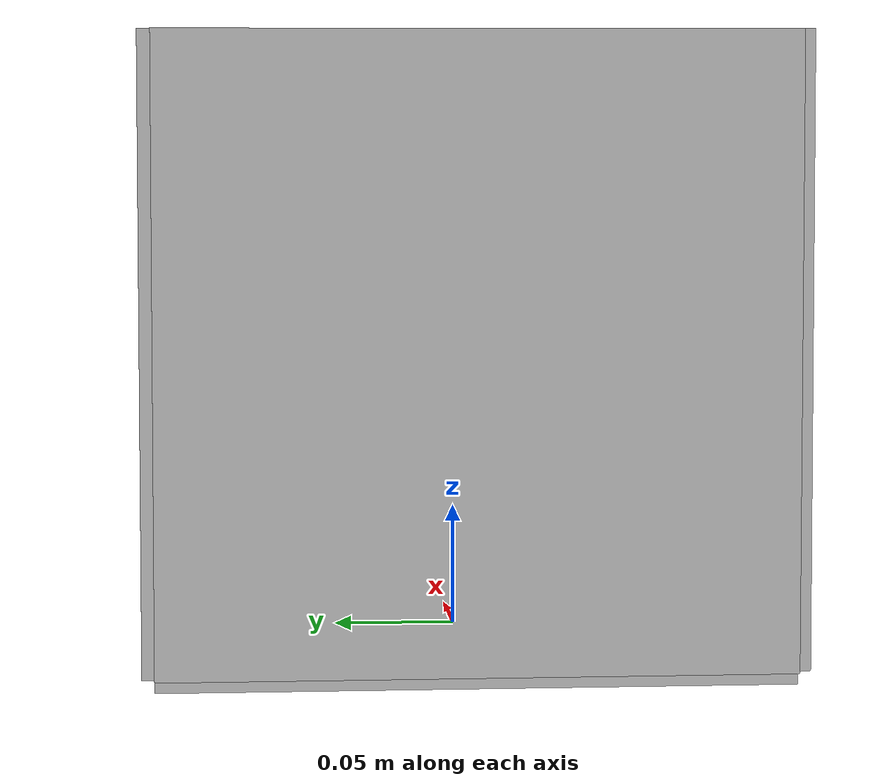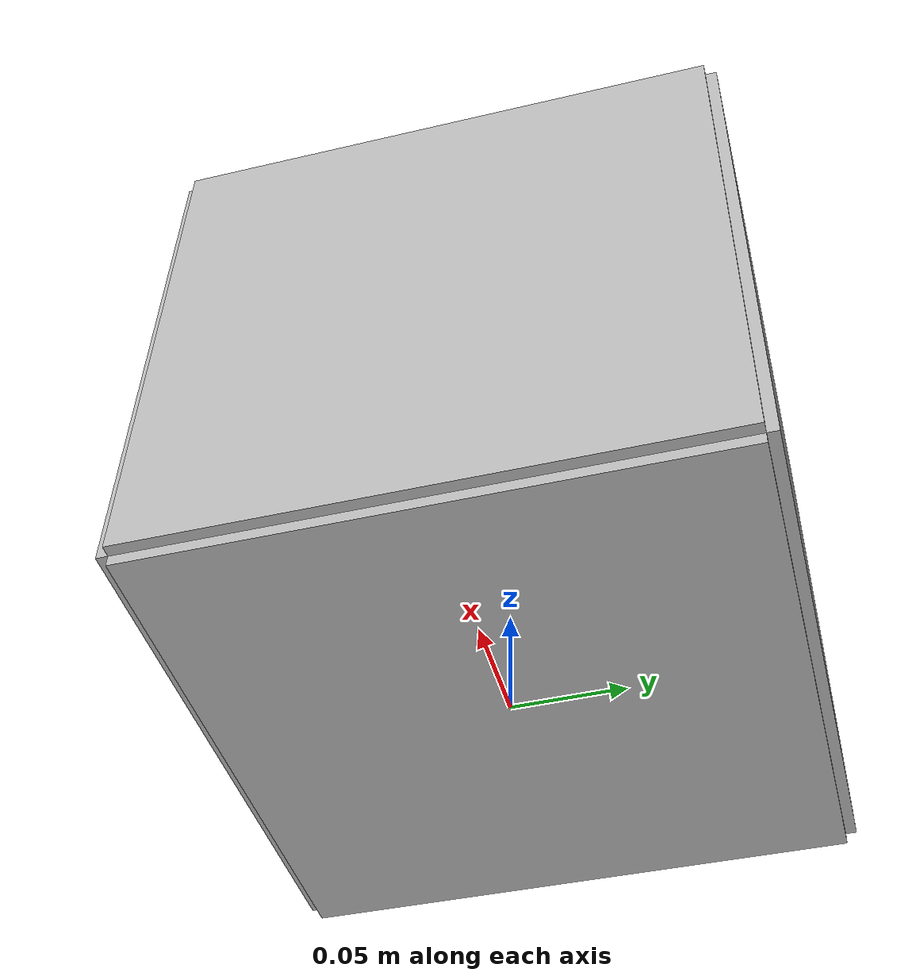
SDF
<?xml version="1.0" ?>
<sdf version="1.4">
  <model name="trash_can">
    <static>true</static>
    <link name="link">
        <visual name="visual1">
          <geometry>
            <box>
		<size> 0.25 0.25 0.01 </size>
           </box>
          </geometry>
        </visual>
        <visual name="visual2">
          <pose>0.125 0 0.125  0 1.57 0 </pose>
	  <geometry>
            <box>
		<size> 0.25 0.25 0.01 </size>
           </box>
          </geometry>
        </visual>
        <visual name="visual3">
          <pose>-0.125 0 0.125  0 1.57 0 </pose>
	  <geometry>
            <box>
		<size> 0.25 0.25 0.01 </size>
           </box>
          </geometry>
        </visual>
        <visual name="visual4">
          <pose>0 0.125 0.125  1.57 0 0 </pose>
	  <geometry>
            <box>
		<size> 0.25 0.25 0.01 </size>
           </box>
          </geometry>
        </visual>
        <visual name="visual5">
          <pose>0 -0.125 0.125  1.57 0 0 </pose>
	  <geometry>
            <box>
		<size> 0.25 0.25 0.01 </size>
           </box>
          </geometry>
        </visual>
        <collision name="collision1">
          <geometry>
            <box>
		<size> 0.25 0.25 0.01 </size>
           </box>
          </geometry>
        </collision>
        <collision name="collision2">
          <pose>0.125 0 0.125  0 1.57 0 </pose>
	  <geometry>
            <box>
		<size> 0.25 0.25 0.01 </size>
           </box>
          </geometry>
        </collision>
        <collision name="collision3">
          <pose>-0.125 0 0.125  0 1.57 0 </pose>
	  <geometry>
            <box>
		<size> 0.25 0.25 0.01 </size>
           </box>
          </geometry>
        </collision>
        <collision name="collision4">
          <pose>0 0.125 0.125  1.57 0 0 </pose>
	  <geometry>
            <box>
		<size> 0.25 0.25 0.01 </size>
           </box>
          </geometry>
        </collision>
        <collision name="collision5">
          <pose>0 -0.125 0.125  1.57 0 0 </pose>
	  <geometry>
            <box>
		<size> 0.25 0.25 0.01 </size>
           </box>
          </geometry>
        </collision>
    </link>
  </model>
</sdf>
